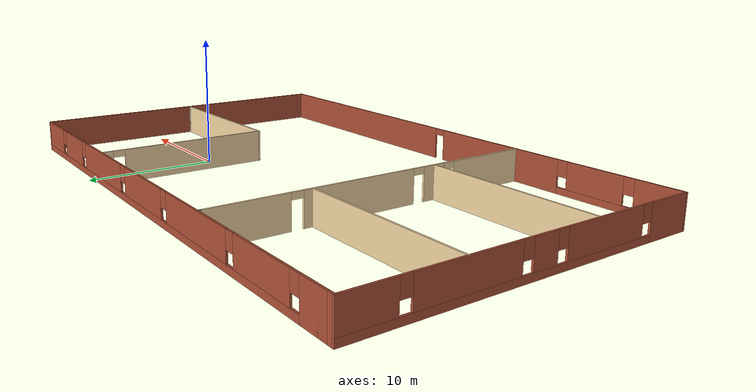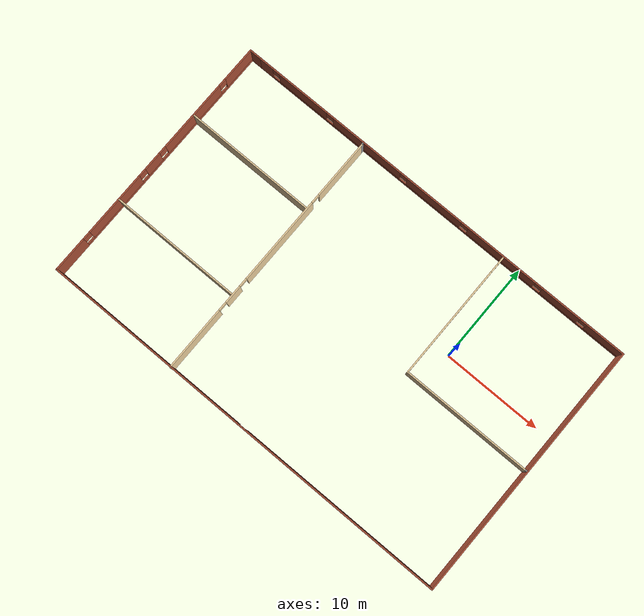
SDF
<?xml version='1.0'?>
<sdf version='1.6'>
  <model name='house'>
    <pose frame=''>-9.7963 -3.53854 0 0 -0 0</pose>
    <link name='Wall_20'>
      <pose frame=''>0.25 13.0749 0 0 -0 0</pose>
      <visual name='Wall_20_Visual_0'>
        <pose frame=''>-20.0162 0 1.25 0 -0 0</pose>
        <geometry>
          <box>
            <size>2.21756 0.15 2.5</size>
          </box>
        </geometry>
        <material>
          <script>
            <uri>file://media/materials/scripts/gazebo.material</uri>
            <name>Gazebo/Bricks</name>
          </script>
          <ambient>0.921569 0.807843 0.615686 1</ambient>
        </material>
        <meta>
          <layer>0</layer>
        </meta>
      </visual>
      <collision name='Wall_20_Collision_0'>
        <geometry>
          <box>
            <size>2.21756 0.15 2.5</size>
          </box>
        </geometry>
        <pose frame=''>-20.0162 0 1.25 0 -0 0</pose>
      </collision>
      <visual name='Wall_20_Visual_1'>
        <pose frame=''>1.10878 0 0.25 0 -0 0</pose>
        <geometry>
          <box>
            <size>40.0324 0.15 0.5</size>
          </box>
        </geometry>
        <material>
          <script>
            <uri>file://media/materials/scripts/gazebo.material</uri>
            <name>Gazebo/Bricks</name>
          </script>
          <ambient>0.921569 0.807843 0.615686 1</ambient>
        </material>
        <meta>
          <layer>0</layer>
        </meta>
      </visual>
      <collision name='Wall_20_Collision_1'>
        <geometry>
          <box>
            <size>40.0324 0.15 0.5</size>
          </box>
        </geometry>
        <pose frame=''>1.10878 0 0.25 0 -0 0</pose>
      </collision>
      <visual name='Wall_20_Visual_2'>
        <pose frame=''>-15.3649 0 1.5 0 -0 0</pose>
        <geometry>
          <box>
            <size>5.48509 0.15 2</size>
          </box>
        </geometry>
        <material>
          <script>
            <uri>file://media/materials/scripts/gazebo.material</uri>
            <name>Gazebo/Bricks</name>
          </script>
          <ambient>0.921569 0.807843 0.615686 1</ambient>
        </material>
        <meta>
          <layer>0</layer>
        </meta>
      </visual>
      <collision name='Wall_20_Collision_2'>
        <geometry>
          <box>
            <size>5.48509 0.15 2</size>
          </box>
        </geometry>
        <pose frame=''>-15.3649 0 1.5 0 -0 0</pose>
      </collision>
      <visual name='Wall_20_Visual_3'>
        <pose frame=''>-7.92857 0 1.5 0 -0 0</pose>
        <geometry>
          <box>
            <size>7.78755 0.15 2</size>
          </box>
        </geometry>
        <material>
          <script>
            <uri>file://media/materials/scripts/gazebo.material</uri>
            <name>Gazebo/Bricks</name>
          </script>
          <ambient>0.921569 0.807843 0.615686 1</ambient>
        </material>
        <meta>
          <layer>0</layer>
        </meta>
      </visual>
      <collision name='Wall_20_Collision_3'>
        <geometry>
          <box>
            <size>7.78755 0.15 2</size>
          </box>
        </geometry>
        <pose frame=''>-7.92857 0 1.5 0 -0 0</pose>
      </collision>
      <visual name='Wall_20_Visual_4'>
        <pose frame=''>-0.149988 0 1.5 0 -0 0</pose>
        <geometry>
          <box>
            <size>6.16961 0.15 2</size>
          </box>
        </geometry>
        <material>
          <script>
            <uri>file://media/materials/scripts/gazebo.material</uri>
            <name>Gazebo/Bricks</name>
          </script>
          <ambient>0.921569 0.807843 0.615686 1</ambient>
        </material>
        <meta>
          <layer>0</layer>
        </meta>
      </visual>
      <collision name='Wall_20_Collision_4'>
        <geometry>
          <box>
            <size>6.16961 0.15 2</size>
          </box>
        </geometry>
        <pose frame=''>-0.149988 0 1.5 0 -0 0</pose>
      </collision>
      <visual name='Wall_20_Visual_5'>
        <pose frame=''>7.53525 0 1.5 0 -0 0</pose>
        <geometry>
          <box>
            <size>7.60087 0.15 2</size>
          </box>
        </geometry>
        <material>
          <script>
            <uri>file://media/materials/scripts/gazebo.material</uri>
            <name>Gazebo/Bricks</name>
          </script>
          <ambient>0.921569 0.807843 0.615686 1</ambient>
        </material>
        <meta>
          <layer>0</layer>
        </meta>
      </visual>
      <collision name='Wall_20_Collision_5'>
        <geometry>
          <box>
            <size>7.60087 0.15 2</size>
          </box>
        </geometry>
        <pose frame=''>7.53525 0 1.5 0 -0 0</pose>
      </collision>
      <visual name='Wall_20_Visual_6'>
        <pose frame=''>14.2248 0 1.5 0 -0 0</pose>
        <geometry>
          <box>
            <size>4.17829 0.15 2</size>
          </box>
        </geometry>
        <material>
          <script>
            <uri>file://media/materials/scripts/gazebo.material</uri>
            <name>Gazebo/Bricks</name>
          </script>
          <ambient>0.921569 0.807843 0.615686 1</ambient>
        </material>
        <meta>
          <layer>0</layer>
        </meta>
      </visual>
      <collision name='Wall_20_Collision_6'>
        <geometry>
          <box>
            <size>4.17829 0.15 2</size>
          </box>
        </geometry>
        <pose frame=''>14.2248 0 1.5 0 -0 0</pose>
      </collision>
      <visual name='Wall_20_Visual_7'>
        <pose frame=''>19.1195 0 1.5 0 -0 0</pose>
        <geometry>
          <box>
            <size>4.01103 0.15 2</size>
          </box>
        </geometry>
        <material>
          <script>
            <uri>file://media/materials/scripts/gazebo.material</uri>
            <name>Gazebo/Bricks</name>
          </script>
          <ambient>0.921569 0.807843 0.615686 1</ambient>
        </material>
        <meta>
          <layer>0</layer>
        </meta>
      </visual>
      <collision name='Wall_20_Collision_7'>
        <geometry>
          <box>
            <size>4.01103 0.15 2</size>
          </box>
        </geometry>
        <pose frame=''>19.1195 0 1.5 0 -0 0</pose>
      </collision>
      <visual name='Wall_20_Visual_8'>
        <pose frame=''>-18.5074 0 1.9 0 -0 0</pose>
        <geometry>
          <box>
            <size>0.8 0.15 1.2</size>
          </box>
        </geometry>
        <material>
          <script>
            <uri>file://media/materials/scripts/gazebo.material</uri>
            <name>Gazebo/Bricks</name>
          </script>
          <ambient>0.921569 0.807843 0.615686 1</ambient>
        </material>
        <meta>
          <layer>0</layer>
        </meta>
      </visual>
      <collision name='Wall_20_Collision_8'>
        <geometry>
          <box>
            <size>0.8 0.15 1.2</size>
          </box>
        </geometry>
        <pose frame=''>-18.5074 0 1.9 0 -0 0</pose>
      </collision>
      <visual name='Wall_20_Visual_9'>
        <pose frame=''>-12.2223 0 1.9 0 -0 0</pose>
        <geometry>
          <box>
            <size>0.8 0.15 1.2</size>
          </box>
        </geometry>
        <material>
          <script>
            <uri>file://media/materials/scripts/gazebo.material</uri>
            <name>Gazebo/Bricks</name>
          </script>
          <ambient>0.921569 0.807843 0.615686 1</ambient>
        </material>
        <meta>
          <layer>0</layer>
        </meta>
      </visual>
      <collision name='Wall_20_Collision_9'>
        <geometry>
          <box>
            <size>0.8 0.15 1.2</size>
          </box>
        </geometry>
        <pose frame=''>-12.2223 0 1.9 0 -0 0</pose>
      </collision>
      <visual name='Wall_20_Visual_10'>
        <pose frame=''>-3.63479 0 1.9 0 -0 0</pose>
        <geometry>
          <box>
            <size>0.8 0.15 1.2</size>
          </box>
        </geometry>
        <material>
          <script>
            <uri>file://media/materials/scripts/gazebo.material</uri>
            <name>Gazebo/Bricks</name>
          </script>
          <ambient>0.921569 0.807843 0.615686 1</ambient>
        </material>
        <meta>
          <layer>0</layer>
        </meta>
      </visual>
      <collision name='Wall_20_Collision_10'>
        <geometry>
          <box>
            <size>0.8 0.15 1.2</size>
          </box>
        </geometry>
        <pose frame=''>-3.63479 0 1.9 0 -0 0</pose>
      </collision>
      <visual name='Wall_20_Visual_11'>
        <pose frame=''>3.33482 0 1.9 0 -0 0</pose>
        <geometry>
          <box>
            <size>0.8 0.15 1.2</size>
          </box>
        </geometry>
        <material>
          <script>
            <uri>file://media/materials/scripts/gazebo.material</uri>
            <name>Gazebo/Bricks</name>
          </script>
          <ambient>0.921569 0.807843 0.615686 1</ambient>
        </material>
        <meta>
          <layer>0</layer>
        </meta>
      </visual>
      <collision name='Wall_20_Collision_11'>
        <geometry>
          <box>
            <size>0.8 0.15 1.2</size>
          </box>
        </geometry>
        <pose frame=''>3.33482 0 1.9 0 -0 0</pose>
      </collision>
      <visual name='Wall_20_Visual_12'>
        <pose frame=''>11.7357 0 1.9 0 -0 0</pose>
        <geometry>
          <box>
            <size>0.8 0.15 1.2</size>
          </box>
        </geometry>
        <material>
          <script>
            <uri>file://media/materials/scripts/gazebo.material</uri>
            <name>Gazebo/Bricks</name>
          </script>
          <ambient>0.921569 0.807843 0.615686 1</ambient>
        </material>
        <meta>
          <layer>0</layer>
        </meta>
      </visual>
      <collision name='Wall_20_Collision_12'>
        <geometry>
          <box>
            <size>0.8 0.15 1.2</size>
          </box>
        </geometry>
        <pose frame=''>11.7357 0 1.9 0 -0 0</pose>
      </collision>
      <visual name='Wall_20_Visual_13'>
        <pose frame=''>16.714 0 1.9 0 -0 0</pose>
        <geometry>
          <box>
            <size>0.8 0.15 1.2</size>
          </box>
        </geometry>
        <material>
          <script>
            <uri>file://media/materials/scripts/gazebo.material</uri>
            <name>Gazebo/Bricks</name>
          </script>
          <ambient>0.921569 0.807843 0.615686 1</ambient>
        </material>
        <meta>
          <layer>0</layer>
        </meta>
      </visual>
      <collision name='Wall_20_Collision_13'>
        <geometry>
          <box>
            <size>0.8 0.15 1.2</size>
          </box>
        </geometry>
        <pose frame=''>16.714 0 1.9 0 -0 0</pose>
      </collision>
    </link>
    <link name='Wall_21'>
      <collision name='Wall_21_Collision'>
        <geometry>
          <box>
            <size>26.25 0.15 2.5</size>
          </box>
        </geometry>
        <pose frame=''>0 0 1.25 0 -0 0</pose>
      </collision>
      <visual name='Wall_21_Visual'>
        <pose frame=''>0 0 1.25 0 -0 0</pose>
        <geometry>
          <box>
            <size>26.25 0.15 2.5</size>
          </box>
        </geometry>
        <material>
          <script>
            <uri>file://media/materials/scripts/gazebo.material</uri>
            <name>Gazebo/Bricks</name>
          </script>
          <ambient>0.921569 0.807843 0.615686 1</ambient>
        </material>
        <meta>
          <layer>0</layer>
        </meta>
      </visual>
      <pose frame=''>21.3 0.024935 0 0 0 -1.5708</pose>
    </link>
    <link name='Wall_22'>
      <pose frame=''>0 -13.0251 0 0 -0 3.14159</pose>
      <visual name='Wall_22_Visual_0'>
        <pose frame=''>-10.9509 0 1.25 0 -0 0</pose>
        <geometry>
          <box>
            <size>20.8481 0.15 2.5</size>
          </box>
        </geometry>
        <material>
          <script>
            <uri>file://media/materials/scripts/gazebo.material</uri>
            <name>Gazebo/Bricks</name>
          </script>
          <ambient>0.921569 0.807843 0.615686 1</ambient>
        </material>
        <meta>
          <layer>0</layer>
        </meta>
      </visual>
      <collision name='Wall_22_Collision_0'>
        <geometry>
          <box>
            <size>20.8481 0.15 2.5</size>
          </box>
        </geometry>
        <pose frame=''>-10.9509 0 1.25 0 -0 0</pose>
      </collision>
      <visual name='Wall_22_Visual_1'>
        <pose frame=''>6.13969 0 1.25 0 -0 0</pose>
        <geometry>
          <box>
            <size>11.5331 0.15 2.5</size>
          </box>
        </geometry>
        <material>
          <script>
            <uri>file://media/materials/scripts/gazebo.material</uri>
            <name>Gazebo/Bricks</name>
          </script>
          <ambient>0.921569 0.807843 0.615686 1</ambient>
        </material>
        <meta>
          <layer>0</layer>
        </meta>
      </visual>
      <collision name='Wall_22_Collision_1'>
        <geometry>
          <box>
            <size>11.5331 0.15 2.5</size>
          </box>
        </geometry>
        <pose frame=''>6.13969 0 1.25 0 -0 0</pose>
      </collision>
      <visual name='Wall_22_Visual_2'>
        <pose frame=''>16.6406 0 0.25 0 -0 0</pose>
        <geometry>
          <box>
            <size>9.46877 0.15 0.5</size>
          </box>
        </geometry>
        <material>
          <script>
            <uri>file://media/materials/scripts/gazebo.material</uri>
            <name>Gazebo/Bricks</name>
          </script>
          <ambient>0.921569 0.807843 0.615686 1</ambient>
        </material>
        <meta>
          <layer>0</layer>
        </meta>
      </visual>
      <collision name='Wall_22_Collision_2'>
        <geometry>
          <box>
            <size>9.46877 0.15 0.5</size>
          </box>
        </geometry>
        <pose frame=''>16.6406 0 0.25 0 -0 0</pose>
      </collision>
      <visual name='Wall_22_Visual_3'>
        <pose frame=''>14.9158 0 1.5 0 -0 0</pose>
        <geometry>
          <box>
            <size>4.41921 0.15 2</size>
          </box>
        </geometry>
        <material>
          <script>
            <uri>file://media/materials/scripts/gazebo.material</uri>
            <name>Gazebo/Bricks</name>
          </script>
          <ambient>0.921569 0.807843 0.615686 1</ambient>
        </material>
        <meta>
          <layer>0</layer>
        </meta>
      </visual>
      <collision name='Wall_22_Collision_3'>
        <geometry>
          <box>
            <size>4.41921 0.15 2</size>
          </box>
        </geometry>
        <pose frame=''>14.9158 0 1.5 0 -0 0</pose>
      </collision>
      <visual name='Wall_22_Visual_4'>
        <pose frame=''>19.6502 0 1.5 0 -0 0</pose>
        <geometry>
          <box>
            <size>3.44955 0.15 2</size>
          </box>
        </geometry>
        <material>
          <script>
            <uri>file://media/materials/scripts/gazebo.material</uri>
            <name>Gazebo/Bricks</name>
          </script>
          <ambient>0.921569 0.807843 0.615686 1</ambient>
        </material>
        <meta>
          <layer>0</layer>
        </meta>
      </visual>
      <collision name='Wall_22_Collision_4'>
        <geometry>
          <box>
            <size>3.44955 0.15 2</size>
          </box>
        </geometry>
        <pose frame=''>19.6502 0 1.5 0 -0 0</pose>
      </collision>
      <visual name='Wall_22_Visual_5'>
        <pose frame=''>12.3062 0 1.9 0 -0 0</pose>
        <geometry>
          <box>
            <size>0.8 0.15 1.2</size>
          </box>
        </geometry>
        <material>
          <script>
            <uri>file://media/materials/scripts/gazebo.material</uri>
            <name>Gazebo/Bricks</name>
          </script>
          <ambient>0.921569 0.807843 0.615686 1</ambient>
        </material>
        <meta>
          <layer>0</layer>
        </meta>
      </visual>
      <collision name='Wall_22_Collision_5'>
        <geometry>
          <box>
            <size>0.8 0.15 1.2</size>
          </box>
        </geometry>
        <pose frame=''>12.3062 0 1.9 0 -0 0</pose>
      </collision>
      <visual name='Wall_22_Visual_6'>
        <pose frame=''>17.5254 0 1.9 0 -0 0</pose>
        <geometry>
          <box>
            <size>0.8 0.15 1.2</size>
          </box>
        </geometry>
        <material>
          <script>
            <uri>file://media/materials/scripts/gazebo.material</uri>
            <name>Gazebo/Bricks</name>
          </script>
          <ambient>0.921569 0.807843 0.615686 1</ambient>
        </material>
        <meta>
          <layer>0</layer>
        </meta>
      </visual>
      <collision name='Wall_22_Collision_6'>
        <geometry>
          <box>
            <size>0.8 0.15 1.2</size>
          </box>
        </geometry>
        <pose frame=''>17.5254 0 1.9 0 -0 0</pose>
      </collision>
      <visual name='Wall_22_Visual_7'>
        <pose frame=''>-0.076852 0 2.25 0 -0 0</pose>
        <geometry>
          <box>
            <size>0.9 0.15 0.5</size>
          </box>
        </geometry>
        <material>
          <script>
            <uri>file://media/materials/scripts/gazebo.material</uri>
            <name>Gazebo/Bricks</name>
          </script>
          <ambient>0.921569 0.807843 0.615686 1</ambient>
        </material>
        <meta>
          <layer>0</layer>
        </meta>
      </visual>
      <collision name='Wall_22_Collision_7'>
        <geometry>
          <box>
            <size>0.9 0.15 0.5</size>
          </box>
        </geometry>
        <pose frame=''>-0.076852 0 2.25 0 -0 0</pose>
      </collision>
    </link>
    <link name='Wall_23'>
      <pose frame=''>-21.3 0.024935 0 0 -0 1.5708</pose>
      <visual name='Wall_23_Visual_0'>
        <pose frame=''>-11.3167 0 1.25 0 -0 0</pose>
        <geometry>
          <box>
            <size>3.61664 0.15 2.5</size>
          </box>
        </geometry>
        <material>
          <script>
            <uri>file://media/materials/scripts/gazebo.material</uri>
            <name>Gazebo/Bricks</name>
          </script>
          <ambient>0.921569 0.807843 0.615686 1</ambient>
        </material>
        <meta>
          <layer>0</layer>
        </meta>
      </visual>
      <collision name='Wall_23_Collision_0'>
        <geometry>
          <box>
            <size>3.61664 0.15 2.5</size>
          </box>
        </geometry>
        <pose frame=''>-11.3167 0 1.25 0 -0 0</pose>
      </collision>
      <visual name='Wall_23_Visual_1'>
        <pose frame=''>1.80832 0 0.25 0 -0 0</pose>
        <geometry>
          <box>
            <size>22.6334 0.15 0.5</size>
          </box>
        </geometry>
        <material>
          <script>
            <uri>file://media/materials/scripts/gazebo.material</uri>
            <name>Gazebo/Bricks</name>
          </script>
          <ambient>0.921569 0.807843 0.615686 1</ambient>
        </material>
        <meta>
          <layer>0</layer>
        </meta>
      </visual>
      <collision name='Wall_23_Collision_1'>
        <geometry>
          <box>
            <size>22.6334 0.15 0.5</size>
          </box>
        </geometry>
        <pose frame=''>1.80832 0 0.25 0 -0 0</pose>
      </collision>
      <visual name='Wall_23_Visual_2'>
        <pose frame=''>-5.39573 0 1.5 0 -0 0</pose>
        <geometry>
          <box>
            <size>6.62527 0.15 2</size>
          </box>
        </geometry>
        <material>
          <script>
            <uri>file://media/materials/scripts/gazebo.material</uri>
            <name>Gazebo/Bricks</name>
          </script>
          <ambient>0.921569 0.807843 0.615686 1</ambient>
        </material>
        <meta>
          <layer>0</layer>
        </meta>
      </visual>
      <collision name='Wall_23_Collision_2'>
        <geometry>
          <box>
            <size>6.62527 0.15 2</size>
          </box>
        </geometry>
        <pose frame=''>-5.39573 0 1.5 0 -0 0</pose>
      </collision>
      <visual name='Wall_23_Visual_3'>
        <pose frame=''>-0.337935 0 1.5 0 -0 0</pose>
        <geometry>
          <box>
            <size>1.89032 0.15 2</size>
          </box>
        </geometry>
        <material>
          <script>
            <uri>file://media/materials/scripts/gazebo.material</uri>
            <name>Gazebo/Bricks</name>
          </script>
          <ambient>0.921569 0.807843 0.615686 1</ambient>
        </material>
        <meta>
          <layer>0</layer>
        </meta>
      </visual>
      <collision name='Wall_23_Collision_3'>
        <geometry>
          <box>
            <size>1.89032 0.15 2</size>
          </box>
        </geometry>
        <pose frame=''>-0.337935 0 1.5 0 -0 0</pose>
      </collision>
      <visual name='Wall_23_Visual_4'>
        <pose frame=''>5.0696 0 1.5 0 -0 0</pose>
        <geometry>
          <box>
            <size>7.32475 0.15 2</size>
          </box>
        </geometry>
        <material>
          <script>
            <uri>file://media/materials/scripts/gazebo.material</uri>
            <name>Gazebo/Bricks</name>
          </script>
          <ambient>0.921569 0.807843 0.615686 1</ambient>
        </material>
        <meta>
          <layer>0</layer>
        </meta>
      </visual>
      <collision name='Wall_23_Collision_4'>
        <geometry>
          <box>
            <size>7.32475 0.15 2</size>
          </box>
        </geometry>
        <pose frame=''>5.0696 0 1.5 0 -0 0</pose>
      </collision>
      <visual name='Wall_23_Visual_5'>
        <pose frame=''>11.3285 0 1.5 0 -0 0</pose>
        <geometry>
          <box>
            <size>3.59302 0.15 2</size>
          </box>
        </geometry>
        <material>
          <script>
            <uri>file://media/materials/scripts/gazebo.material</uri>
            <name>Gazebo/Bricks</name>
          </script>
          <ambient>0.921569 0.807843 0.615686 1</ambient>
        </material>
        <meta>
          <layer>0</layer>
        </meta>
      </visual>
      <collision name='Wall_23_Collision_5'>
        <geometry>
          <box>
            <size>3.59302 0.15 2</size>
          </box>
        </geometry>
        <pose frame=''>11.3285 0 1.5 0 -0 0</pose>
      </collision>
      <visual name='Wall_23_Visual_6'>
        <pose frame=''>-9.10836 0 1.9 0 -0 0</pose>
        <geometry>
          <box>
            <size>0.8 0.15 1.2</size>
          </box>
        </geometry>
        <material>
          <script>
            <uri>file://media/materials/scripts/gazebo.material</uri>
            <name>Gazebo/Bricks</name>
          </script>
          <ambient>0.921569 0.807843 0.615686 1</ambient>
        </material>
        <meta>
          <layer>0</layer>
        </meta>
      </visual>
      <collision name='Wall_23_Collision_6'>
        <geometry>
          <box>
            <size>0.8 0.15 1.2</size>
          </box>
        </geometry>
        <pose frame=''>-9.10836 0 1.9 0 -0 0</pose>
      </collision>
      <visual name='Wall_23_Visual_7'>
        <pose frame=''>-1.68309 0 1.9 0 -0 0</pose>
        <geometry>
          <box>
            <size>0.8 0.15 1.2</size>
          </box>
        </geometry>
        <material>
          <script>
            <uri>file://media/materials/scripts/gazebo.material</uri>
            <name>Gazebo/Bricks</name>
          </script>
          <ambient>0.921569 0.807843 0.615686 1</ambient>
        </material>
        <meta>
          <layer>0</layer>
        </meta>
      </visual>
      <collision name='Wall_23_Collision_7'>
        <geometry>
          <box>
            <size>0.8 0.15 1.2</size>
          </box>
        </geometry>
        <pose frame=''>-1.68309 0 1.9 0 -0 0</pose>
      </collision>
      <visual name='Wall_23_Visual_8'>
        <pose frame=''>1.00722 0 1.9 0 -0 0</pose>
        <geometry>
          <box>
            <size>0.8 0.15 1.2</size>
          </box>
        </geometry>
        <material>
          <script>
            <uri>file://media/materials/scripts/gazebo.material</uri>
            <name>Gazebo/Bricks</name>
          </script>
          <ambient>0.921569 0.807843 0.615686 1</ambient>
        </material>
        <meta>
          <layer>0</layer>
        </meta>
      </visual>
      <collision name='Wall_23_Collision_8'>
        <geometry>
          <box>
            <size>0.8 0.15 1.2</size>
          </box>
        </geometry>
        <pose frame=''>1.00722 0 1.9 0 -0 0</pose>
      </collision>
      <visual name='Wall_23_Visual_9'>
        <pose frame=''>9.13198 0 1.9 0 -0 0</pose>
        <geometry>
          <box>
            <size>0.8 0.15 1.2</size>
          </box>
        </geometry>
        <material>
          <script>
            <uri>file://media/materials/scripts/gazebo.material</uri>
            <name>Gazebo/Bricks</name>
          </script>
          <ambient>0.921569 0.807843 0.615686 1</ambient>
        </material>
        <meta>
          <layer>0</layer>
        </meta>
      </visual>
      <collision name='Wall_23_Collision_9'>
        <geometry>
          <box>
            <size>0.8 0.15 1.2</size>
          </box>
        </geometry>
        <pose frame=''>9.13198 0 1.9 0 -0 0</pose>
      </collision>
    </link>
    <link name='Wall_24'>
      <collision name='Wall_24_Collision'>
        <geometry>
          <box>
            <size>1.25 0.15 2.5</size>
          </box>
        </geometry>
        <pose frame=''>0 0 1.25 0 -0 0</pose>
      </collision>
      <visual name='Wall_24_Visual'>
        <pose frame=''>0 0 1.25 0 -0 0</pose>
        <geometry>
          <box>
            <size>1.25 0.15 2.5</size>
          </box>
        </geometry>
        <material>
          <script>
            <uri>file://media/materials/scripts/gazebo.material</uri>
            <name>Gazebo/Bricks</name>
          </script>
          <ambient>1 1 1 1</ambient>
        </material>
        <meta>
          <layer>0</layer>
        </meta>
      </visual>
      <pose frame=''>-20.75 13.0749 0 0 -0 0</pose>
    </link>
    <link name='Wall_26'>
      <pose frame=''>-8.0479 -0.149936 0 0 -0 1.5708</pose>
      <visual name='Wall_26_Visual_0'>
        <pose frame=''>-9.71207 0 1.25 0 -0 0</pose>
        <geometry>
          <box>
            <size>6.57585 0.15 2.5</size>
          </box>
        </geometry>
        <material>
          <script>
            <uri>file://media/materials/scripts/gazebo.material</uri>
            <name>Gazebo/Grey</name>
          </script>
          <ambient>0.921569 0.807843 0.615686 1</ambient>
        </material>
        <meta>
          <layer>0</layer>
        </meta>
      </visual>
      <collision name='Wall_26_Collision_0'>
        <geometry>
          <box>
            <size>6.57585 0.15 2.5</size>
          </box>
        </geometry>
        <pose frame=''>-9.71207 0 1.25 0 -0 0</pose>
      </collision>
      <visual name='Wall_26_Visual_1'>
        <pose frame=''>-4.60208 0 1.25 0 -0 0</pose>
        <geometry>
          <box>
            <size>1.84412 0.15 2.5</size>
          </box>
        </geometry>
        <material>
          <script>
            <uri>file://media/materials/scripts/gazebo.material</uri>
            <name>Gazebo/Grey</name>
          </script>
          <ambient>0.921569 0.807843 0.615686 1</ambient>
        </material>
        <meta>
          <layer>0</layer>
        </meta>
      </visual>
      <collision name='Wall_26_Collision_1'>
        <geometry>
          <box>
            <size>1.84412 0.15 2.5</size>
          </box>
        </geometry>
        <pose frame=''>-4.60208 0 1.25 0 -0 0</pose>
      </collision>
      <visual name='Wall_26_Visual_2'>
        <pose frame=''>1.66635 0 1.25 0 -0 0</pose>
        <geometry>
          <box>
            <size>8.89275 0.15 2.5</size>
          </box>
        </geometry>
        <material>
          <script>
            <uri>file://media/materials/scripts/gazebo.material</uri>
            <name>Gazebo/Grey</name>
          </script>
          <ambient>0.921569 0.807843 0.615686 1</ambient>
        </material>
        <meta>
          <layer>0</layer>
        </meta>
      </visual>
      <collision name='Wall_26_Collision_2'>
        <geometry>
          <box>
            <size>8.89275 0.15 2.5</size>
          </box>
        </geometry>
        <pose frame=''>1.66635 0 1.25 0 -0 0</pose>
      </collision>
      <visual name='Wall_26_Visual_3'>
        <pose frame=''>10.0064 0 1.25 0 -0 0</pose>
        <geometry>
          <box>
            <size>5.98727 0.15 2.5</size>
          </box>
        </geometry>
        <material>
          <script>
            <uri>file://media/materials/scripts/gazebo.material</uri>
            <name>Gazebo/Grey</name>
          </script>
          <ambient>0.921569 0.807843 0.615686 1</ambient>
        </material>
        <meta>
          <layer>0</layer>
        </meta>
      </visual>
      <collision name='Wall_26_Collision_3'>
        <geometry>
          <box>
            <size>5.98727 0.15 2.5</size>
          </box>
        </geometry>
        <pose frame=''>10.0064 0 1.25 0 -0 0</pose>
      </collision>
      <visual name='Wall_26_Visual_4'>
        <pose frame=''>-5.97415 0 2.25 0 -0 0</pose>
        <geometry>
          <box>
            <size>0.9 0.15 0.5</size>
          </box>
        </geometry>
        <material>
          <script>
            <uri>file://media/materials/scripts/gazebo.material</uri>
            <name>Gazebo/Grey</name>
          </script>
          <ambient>0.921569 0.807843 0.615686 1</ambient>
        </material>
        <meta>
          <layer>0</layer>
        </meta>
      </visual>
      <collision name='Wall_26_Collision_4'>
        <geometry>
          <box>
            <size>0.9 0.15 0.5</size>
          </box>
        </geometry>
        <pose frame=''>-5.97415 0 2.25 0 -0 0</pose>
      </collision>
      <visual name='Wall_26_Visual_5'>
        <pose frame=''>-3.23002 0 2.25 0 -0 0</pose>
        <geometry>
          <box>
            <size>0.9 0.15 0.5</size>
          </box>
        </geometry>
        <material>
          <script>
            <uri>file://media/materials/scripts/gazebo.material</uri>
            <name>Gazebo/Grey</name>
          </script>
          <ambient>0.921569 0.807843 0.615686 1</ambient>
        </material>
        <meta>
          <layer>0</layer>
        </meta>
      </visual>
      <collision name='Wall_26_Collision_5'>
        <geometry>
          <box>
            <size>0.9 0.15 0.5</size>
          </box>
        </geometry>
        <pose frame=''>-3.23002 0 2.25 0 -0 0</pose>
      </collision>
      <visual name='Wall_26_Visual_6'>
        <pose frame=''>6.56273 0 2.25 0 -0 0</pose>
        <geometry>
          <box>
            <size>0.9 0.15 0.5</size>
          </box>
        </geometry>
        <material>
          <script>
            <uri>file://media/materials/scripts/gazebo.material</uri>
            <name>Gazebo/Grey</name>
          </script>
          <ambient>0.921569 0.807843 0.615686 1</ambient>
        </material>
        <meta>
          <layer>0</layer>
        </meta>
      </visual>
      <collision name='Wall_26_Collision_6'>
        <geometry>
          <box>
            <size>0.9 0.15 0.5</size>
          </box>
        </geometry>
        <pose frame=''>6.56273 0 2.25 0 -0 0</pose>
      </collision>
    </link>
    <link name='Wall_27'>
      <collision name='Wall_27_Collision'>
        <geometry>
          <box>
            <size>0.25 0.15 2.5</size>
          </box>
        </geometry>
        <pose frame=''>0 0 1.25 0 -0 0</pose>
      </collision>
      <visual name='Wall_27_Visual'>
        <pose frame=''>0 0 1.25 0 -0 0</pose>
        <geometry>
          <box>
            <size>0.25 0.15 2.5</size>
          </box>
        </geometry>
        <material>
          <script>
            <uri>file://media/materials/scripts/gazebo.material</uri>
            <name>Gazebo/Grey</name>
          </script>
          <ambient>1 1 1 1</ambient>
        </material>
        <meta>
          <layer>0</layer>
        </meta>
      </visual>
      <pose frame=''>-8.0479 12.8251 0 0 -0 1.5708</pose>
    </link>
    <link name='Wall_28'>
      <collision name='Wall_28_Collision'>
        <geometry>
          <box>
            <size>0.25 0.15 2.5</size>
          </box>
        </geometry>
        <pose frame=''>0 0 1.25 0 -0 0</pose>
      </collision>
      <visual name='Wall_28_Visual'>
        <pose frame=''>0 0 1.25 0 -0 0</pose>
        <geometry>
          <box>
            <size>0.25 0.15 2.5</size>
          </box>
        </geometry>
        <material>
          <script>
            <uri>file://media/materials/scripts/gazebo.material</uri>
            <name>Gazebo/Grey</name>
          </script>
          <ambient>1 1 1 1</ambient>
        </material>
        <meta>
          <layer>0</layer>
        </meta>
      </visual>
      <pose frame=''>-8.0479 12.9251 0 0 -0 1.5708</pose>
    </link>
    <link name='Wall_32'>
      <collision name='Wall_32_Collision'>
        <geometry>
          <box>
            <size>13.25 0.15 2.5</size>
          </box>
        </geometry>
        <pose frame=''>0 0 1.25 0 -0 0</pose>
      </collision>
      <visual name='Wall_32_Visual'>
        <pose frame=''>0 0 1.25 0 -0 0</pose>
        <geometry>
          <box>
            <size>13.25 0.15 2.5</size>
          </box>
        </geometry>
        <material>
          <script>
            <uri>file://media/materials/scripts/gazebo.material</uri>
            <name>Gazebo/Grey</name>
          </script>
          <ambient>0.921569 0.807843 0.615686 1</ambient>
        </material>
        <meta>
          <layer>0</layer>
        </meta>
      </visual>
      <pose frame=''>-14.7499 5.25715 0 0 -0 0</pose>
    </link>
    <link name='Wall_34'>
      <collision name='Wall_34_Collision'>
        <geometry>
          <box>
            <size>13.25 0.15 2.5</size>
          </box>
        </geometry>
        <pose frame=''>0 0 1.25 0 -0 0</pose>
      </collision>
      <visual name='Wall_34_Visual'>
        <pose frame=''>0 0 1.25 0 -0 0</pose>
        <geometry>
          <box>
            <size>13.25 0.15 2.5</size>
          </box>
        </geometry>
        <material>
          <script>
            <uri>file://media/materials/scripts/gazebo.material</uri>
            <name>Gazebo/Grey</name>
          </script>
          <ambient>0.921569 0.807843 0.615686 1</ambient>
        </material>
        <meta>
          <layer>0</layer>
        </meta>
      </visual>
      <pose frame=''>-14.6759 -4.78992 0 0 -0 0</pose>
    </link>
    <link name='Wall_36'>
      <collision name='Wall_36_Collision'>
        <geometry>
          <box>
            <size>13.25 0.15 2.5</size>
          </box>
        </geometry>
        <pose frame=''>0 0 1.25 0 -0 0</pose>
      </collision>
      <visual name='Wall_36_Visual'>
        <pose frame=''>0 0 1.25 0 -0 0</pose>
        <geometry>
          <box>
            <size>13.25 0.15 2.5</size>
          </box>
        </geometry>
        <material>
          <script>
            <uri>file://media/materials/scripts/gazebo.material</uri>
            <name>Gazebo/Grey</name>
          </script>
          <ambient>0.921569 0.807843 0.615686 1</ambient>
        </material>
        <meta>
          <layer>0</layer>
        </meta>
      </visual>
      <pose frame=''>14.5287 -0.15158 0 0 -0 0</pose>
    </link>
    <link name='Wall_37'>
      <collision name='Wall_37_Collision'>
        <geometry>
          <box>
            <size>0.25 0.15 2.5</size>
          </box>
        </geometry>
        <pose frame=''>0 0 1.25 0 -0 0</pose>
      </collision>
      <visual name='Wall_37_Visual'>
        <pose frame=''>0 0 1.25 0 -0 0</pose>
        <geometry>
          <box>
            <size>0.25 0.15 2.5</size>
          </box>
        </geometry>
        <material>
          <script>
            <uri>file://media/materials/scripts/gazebo.material</uri>
            <name>Gazebo/Grey</name>
          </script>
          <ambient>1 1 1 1</ambient>
        </material>
        <meta>
          <layer>0</layer>
        </meta>
      </visual>
      <pose frame=''>21.1287 -0.15158 0 0 -0 0</pose>
    </link>
    <link name='Wall_39'>
      <pose frame=''>7.97875 6.39842 0 0 -0 1.5708</pose>
      <visual name='Wall_39_Visual_0'>
        <pose frame=''>-0.85401 0 1.25 0 -0 0</pose>
        <geometry>
          <box>
            <size>11.542 0.15 2.5</size>
          </box>
        </geometry>
        <material>
          <script>
            <uri>file://media/materials/scripts/gazebo.material</uri>
            <name>Gazebo/Grey</name>
          </script>
          <ambient>0.921569 0.807843 0.615686 1</ambient>
        </material>
        <meta>
          <layer>0</layer>
        </meta>
      </visual>
      <collision name='Wall_39_Collision_0'>
        <geometry>
          <box>
            <size>11.542 0.15 2.5</size>
          </box>
        </geometry>
        <pose frame=''>-0.85401 0 1.25 0 -0 0</pose>
      </collision>
      <visual name='Wall_39_Visual_1'>
        <pose frame=''>6.22099 0 1.25 0 -0 0</pose>
        <geometry>
          <box>
            <size>0.80802 0.15 2.5</size>
          </box>
        </geometry>
        <material>
          <script>
            <uri>file://media/materials/scripts/gazebo.material</uri>
            <name>Gazebo/Grey</name>
          </script>
          <ambient>0.921569 0.807843 0.615686 1</ambient>
        </material>
        <meta>
          <layer>0</layer>
        </meta>
      </visual>
      <collision name='Wall_39_Collision_1'>
        <geometry>
          <box>
            <size>0.80802 0.15 2.5</size>
          </box>
        </geometry>
        <pose frame=''>6.22099 0 1.25 0 -0 0</pose>
      </collision>
      <visual name='Wall_39_Visual_2'>
        <pose frame=''>5.36698 0 2.25 0 -0 0</pose>
        <geometry>
          <box>
            <size>0.9 0.15 0.5</size>
          </box>
        </geometry>
        <material>
          <script>
            <uri>file://media/materials/scripts/gazebo.material</uri>
            <name>Gazebo/Grey</name>
          </script>
          <ambient>0.921569 0.807843 0.615686 1</ambient>
        </material>
        <meta>
          <layer>0</layer>
        </meta>
      </visual>
      <collision name='Wall_39_Collision_2'>
        <geometry>
          <box>
            <size>0.9 0.15 0.5</size>
          </box>
        </geometry>
        <pose frame=''>5.36698 0 2.25 0 -0 0</pose>
      </collision>
    </link>
    <static>1</static>
  </model>
</sdf>
